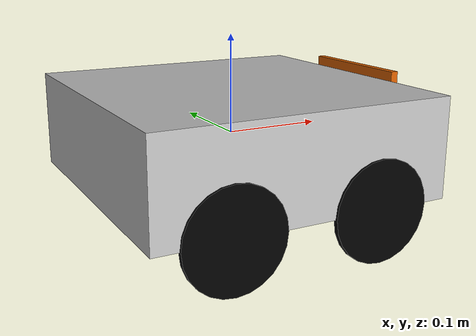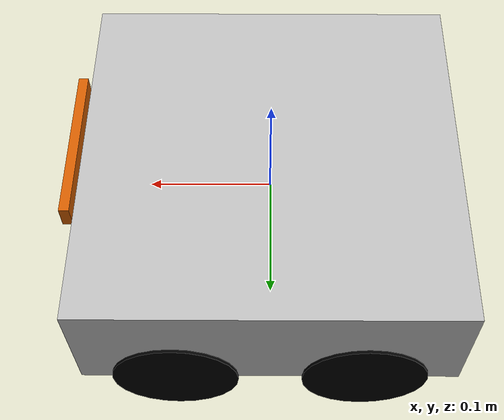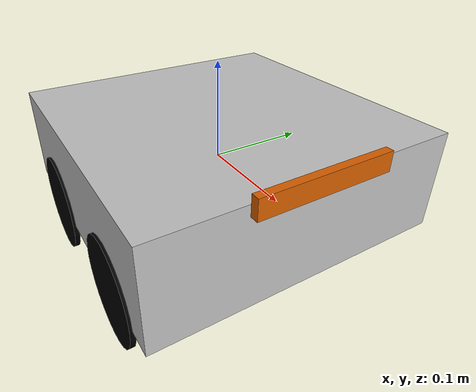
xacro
<?xml version="1.0" ?>
<robot name="ros_control_car" xmlns:xacro="http://ros.org/wiki/xacro">
    <xacro:include filename="$(find car)/urdf/car.urdf.xacro" />

    <!-- camera -->
    <link name="camera_link">
            <visual>
            <origin rpy="0 0 0" xyz="0 0 0"/>
            <geometry>
                <box size="0.0078 0.130 0.0192"/>
            </geometry>
        </visual>
        <collision>
            <geometry>
                <box size="0.0078 0.130 0.0192"/>
            </geometry>
        </collision>
        <inertial>
            <mass value="0.0615752"/>
            <origin rpy="0 0 0" xyz="0 0 0"/>
            <inertia ixx="9.108e-05"
                     ixy="0"
                     ixz="0"
                     iyy="2.51e-06"
                     iyz="0"
                     izz="8.931e-05"
            />
        </inertial>
    </link>

    <joint name="camera_joint" type="fixed">
        <parent link="base_link"/>
        <child link="camera_link"/>
        <origin xyz="0.155 0 0.05" rpy="0 0 0"/>
    </joint>

    <gazebo reference="camera_link">
        <sensor type="camera" name="fpv">
            <update_rate>30.0</update_rate>
            <camera name="fpv">
            <horizontal_fov>1.3962634</horizontal_fov>
            <image>
                <width>800</width>
                <height>800</height>
                <format>R8G8B8</format>
            </image>
            <clip>
                <near>0.02</near>
                <far>300</far>
            </clip>
            <noise>
            <type>gaussian</type>
            <!-- Noise is sampled independently per pixel on each frame.
               That pixel's noise value is added to each of its color
               channels, which at that point lie in the range [0,1]. -->
            <mean>0.0</mean>
            <stddev>0.007</stddev>
            </noise>
        </camera>
        <plugin name="camera_controller" filename="libgazebo_ros_camera.so">
            <alwaysOn>true</alwaysOn>
            <updateRate>0.0</updateRate>
            <cameraName>fpv</cameraName>
            <imageTopicName>image_raw</imageTopicName>
            <cameraInfoTopicName>camera_info</cameraInfoTopicName>
            <frameName>camera_link</frameName>
            <hackBaseline>0.07</hackBaseline>
            <distortionK1>0.0</distortionK1>
            <distortionK2>0.0</distortionK2>
            <distortionK3>0.0</distortionK3>
            <distortionT1>0.0</distortionT1>
            <distortionT2>0.0</distortionT2>
        </plugin>
        </sensor>
    </gazebo>
    <gazebo>
        <plugin name="car_controller" filename="libgazebo_ros_skid_steer_drive.so">
            <updateRate>30.0</updateRate>
            <robotNamespace>/</robotNamespace>
            <leftFrontJoint>front_left_wheel_joint</leftFrontJoint>
            <rightFrontJoint>front_right_wheel_joint</rightFrontJoint>
            <leftRearJoint>back_left_wheel_joint</leftRearJoint>
            <rightRearJoint>back_right_wheel_joint</rightRearJoint>
            <wheelSeparation>0.3</wheelSeparation>
            <wheelDiameter>0.1</wheelDiameter>
            <robotBaseFrame>base_link</robotBaseFrame>
            <torque>20</torque>
            <topicName>cmd_vel</topicName>
            <broadcastTF>false</broadcastTF>
        </plugin>
    </gazebo>

</robot>

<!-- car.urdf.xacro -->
<robot name="car" xmlns:xacro="http://ros.org/wiki/xacro">

    <link name="base_link">

        <inertial>
            <mass value="1.0"/>
            <inertia ixx="0.0009375" iyy="0.0009375" izz="0.015" ixy="0" ixz="0" iyz="0"/>
        </inertial>

        <collision>

            <geometry>
                <box size="0.3 0.3 0.1"/>
            </geometry>

        </collision>

        <visual>
            <geometry>
                <box size="0.3 0.3 0.1"/>
            </geometry>

            <material name="silver">
                <color rgba="0.75 0.75 0.75 1"/>
            </material>
        </visual>

    </link>

    <link name="front_right_wheel">

        <inertial>
            <mass value="0.1"/>
            <inertia ixx="6.2708e-5" iyy="6.2708e-5" izz="0.000125" ixy="0" ixz="0" iyz="0"/>
        </inertial>
        <collision>
            <geometry>
                <cylinder length="0.005" radius="0.05"/>
            </geometry>
        </collision>

        <visual>
            <geometry>
                <cylinder length="0.005" radius="0.05"/>
            </geometry>
            <material name="black">
                <color rgba="0 0 0 1"/>
            </material>
        </visual>
    </link>

    <joint name="front_right_wheel_joint" type="continuous">
        <axis xyz="0 0 1"/>
        <parent link="base_link"/>
        <child link="front_right_wheel"/>
        <origin rpy="-1.5708 0 0" xyz="0.075 -0.15 -.05"/>
    </joint>

    <link name="front_left_wheel">
         <inertial>
            <mass value="0.1"/>
            <inertia ixx="6.2708e-5" iyy="6.2708e-5" izz="0.000125" ixy="0" ixz="0" iyz="0"/>
        </inertial>
        <collision>
            <geometry>
                <cylinder length="0.005" radius="0.05"/>
            </geometry>
        </collision>

        <visual>
            <geometry>
                <cylinder length="0.005" radius="0.05"/>
            </geometry>
            <material name="black"/>
        </visual>
    </link>

    <joint name="front_left_wheel_joint" type="continuous">
        <axis xyz="0 0 1"/>
        <parent link="base_link"/>
        <child link="front_left_wheel"/>
        <origin rpy="-1.5708 0 0" xyz="0.075 0.15 -.05"/>
    </joint>

    <link name="back_right_wheel">
         <inertial>
            <mass value="0.1"/>
            <inertia ixx="6.2708e-5" iyy="6.2708e-5" izz="0.000125" ixy="0" ixz="0" iyz="0"/>
        </inertial>
        <collision>
            <geometry>
                <cylinder length="0.005" radius="0.05"/>
            </geometry>
        </collision>

        <visual>
            <geometry>
                <cylinder length="0.005" radius="0.05"/>
            </geometry>
            <material name="black">
                <color rgba="0 0 0 1"/>
            </material>
        </visual>
    </link>

    <joint name="back_right_wheel_joint" type="continuous">
        <axis xyz="0 0 1"/>
        <parent link="base_link"/>
        <child link="back_right_wheel"/>
        <origin rpy="-1.5708 0 0" xyz="-0.075 -0.15 -.05"/>
    </joint>

    <link name="back_left_wheel">
        <inertial>
            <mass value="0.1"/>
            <inertia ixx="6.2708e-5" iyy="6.2708e-5" izz="0.000125" ixy="0" ixz="0" iyz="0"/>
        </inertial>
        <collision>
            <geometry>
                <cylinder length="0.005" radius="0.05"/>
            </geometry>
        </collision>

        <visual>
            <geometry>
                <cylinder length="0.005" radius="0.05"/>
            </geometry>
            <material name="black"/>
        </visual>
    </link>

    <joint name="back_left_wheel_joint" type="continuous">
        <axis xyz="0 0 1"/>
        <parent link="base_link"/>
        <child link="back_left_wheel"/>
        <origin rpy="-1.5708 0 0" xyz="-0.075 0.15 -.05"/>
    </joint>

    <!-- gazebo -->
    <gazebo reference="base_link">
        <material>Gazebo/Grey</material>
        <mu1>0.1</mu1>
        <mu2>0.1</mu2>
    </gazebo>
    <gazebo reference="back_left_wheel">
        <material>Gazebo/Black</material>
        <mu1>0.1</mu1>
        <mu2>0.1</mu2>
    </gazebo>
    <gazebo reference="back_right_wheel">
        <material>Gazebo/Black</material>
        <mu1>0.1</mu1>
        <mu2>0.1</mu2>
    </gazebo>
    <gazebo reference="front_left_wheel">
        <material>Gazebo/Black</material>
        <mu1>0.1</mu1>
        <mu2>0.1</mu2>
    </gazebo>
    <gazebo reference="front_right_wheel">
        <material>Gazebo/Black</material>
        <mu1>0.1</mu1>
        <mu2>0.1</mu2>
    </gazebo>

</robot>
